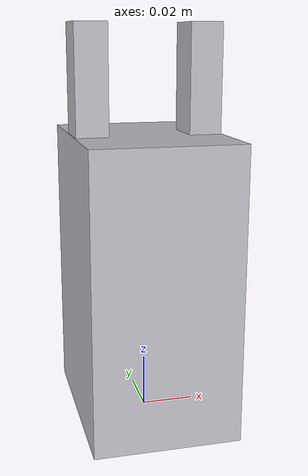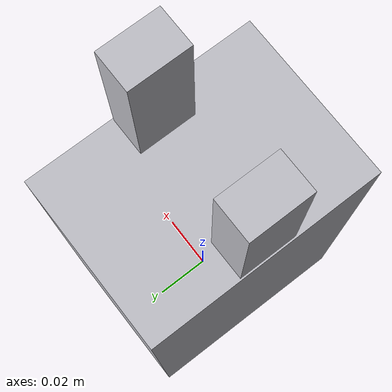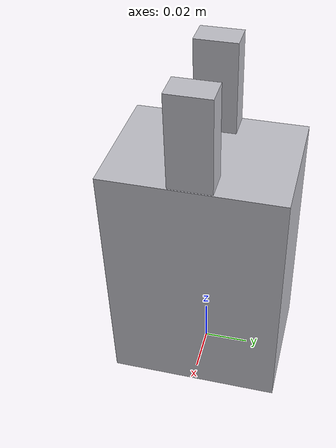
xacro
<?xml version="1.0"?>
<robot xmlns:xacro="http://wiki.ros.org/xacro" name="onrobot_2fg7">
    <xacro:arg name="prefix" default=""/>

    <xacro:include filename="$(find ur3e_description)/urdf/onrobot_2fg7.xacro"/>

    <link name="world"></link>

    <xacro:onrobot_2fg7 prefix="$(arg prefix)" parent="world">
        <origin xyz="0 0 0" rpy="0 0 0"/>
    </xacro:onrobot_2fg7>

    <!-- Attach right fingertip -->
    <xacro:onrobot_2fg7_fingertip prefix="right_" parent="$(arg prefix)right_attachment">
        <origin xyz="0 0 0" rpy="0 0 3.14159265359"/>
    </xacro:onrobot_2fg7_fingertip>

    <!-- Attach left fingertip -->
    <xacro:onrobot_2fg7_fingertip prefix="left_" parent="$(arg prefix)left_attachment">
        <origin xyz="0 0 0" rpy="0 0 0"/>
    </xacro:onrobot_2fg7_fingertip>
</robot>

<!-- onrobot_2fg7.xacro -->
<robot name="onrobot_2fg7"
  xmlns:xacro="http://www.ros.org/wiki/xacro">

  <xacro:include filename="$(find ur3e_description)/urdf/materials.xacro" />

  <xacro:macro name="onrobot_2fg7" params="prefix parent *origin">

    <link name="${prefix}base_link">
      <inertial>
        <origin xyz="-4.898915958379213e-05 2.84756960271082e-06 0.06811082379774974" rpy="0 0 0" />
        <mass value="1.2646523179240972" />
        <inertia ixx="0.001504" iyy="0.001812" izz="0.001053" ixy="-0.0" iyz="0.0" ixz="-3e-06" />
      </inertial>
      <visual>
        <origin xyz="0 0 0.055" rpy="0 0 0" />
        <geometry>
          <box size="0.055 0.075 0.11" />
        </geometry>
        <material name="silver" />
      </visual>
      <collision>
        <origin xyz="0 0 0.055" rpy="0 0 0" />
        <geometry>
          <box size="0.055 0.075 0.11" />
        </geometry>
      </collision>
    </link>

    <link name="${prefix}right_attachment"></link>

    <link name="${prefix}left_attachment"></link>

    <joint name="${prefix}gripper_joint" type="prismatic">
      <origin xyz="0.0 0.0 0.11" rpy="0 0 0" />
      <parent link="${prefix}base_link" />
      <child link="${prefix}left_attachment" />
      <axis xyz="-1.0 0.0 0.0" />
      <limit lower="0.0115" upper="0.0305" effort="140" velocity="0.45" />
      <!-- total 0.38 -->
    </joint>

    <joint name="${prefix}right_finger_joint" type="prismatic">
      <origin xyz="0.0 0.0 0.11" rpy="0 0 0" />
      <parent link="${prefix}base_link" />
      <child link="${prefix}right_attachment" />
      <axis xyz="1.0 0.0 0.0" />
      <limit lower="0.0115" upper="0.0305" effort="140" velocity="0.45" />
      <mimic joint="${prefix}gripper_joint" multiplier="1.0" />
    </joint>

    <joint name="${prefix}2fg7_attach_joint" type="fixed">
      <parent link="${parent}" />
      <child link="${prefix}base_link" />
      <xacro:insert_block name="origin" />
      <axis xyz="0 0 1" />
    </joint>
  </xacro:macro>

  <xacro:macro name="onrobot_2fg7_fingertip" params="prefix parent *origin">

    <link name="${prefix}onrobot_2fg7_finger_link">
      <inertial>
        <origin xyz="0.0 0.0 0.0" rpy="0 0 0" />
        <mass value="0.023219383355922288" />
        <inertia ixx="6e-06" iyy="5e-06" izz="2e-06" ixy="-0.0" iyz="-0.0" ixz="1e-06" />
      </inertial>
      <visual>
        <origin xyz="0.0 0.0 0.02" rpy="0 0 0" />
        <geometry>
          <box size="0.012 0.018 0.04" />
        </geometry>
        <material name="silver" />
      </visual>
      <collision name="right_finger_collision">
        <origin xyz="0.0 0.0 0.02" rpy="0 0 0" />
        <geometry>
          <box size="0.012 0.018 0.04" />
        </geometry>
      </collision>
    </link>

    <joint name="${prefix}onrobot_2fg7_fingertip_joint" type="fixed">
      <parent link="${parent}" />
      <child link="${prefix}onrobot_2fg7_finger_link" />
      <xacro:insert_block name="origin" />
      <axis xyz="0 0 1" />
    </joint>

  </xacro:macro>

</robot>
